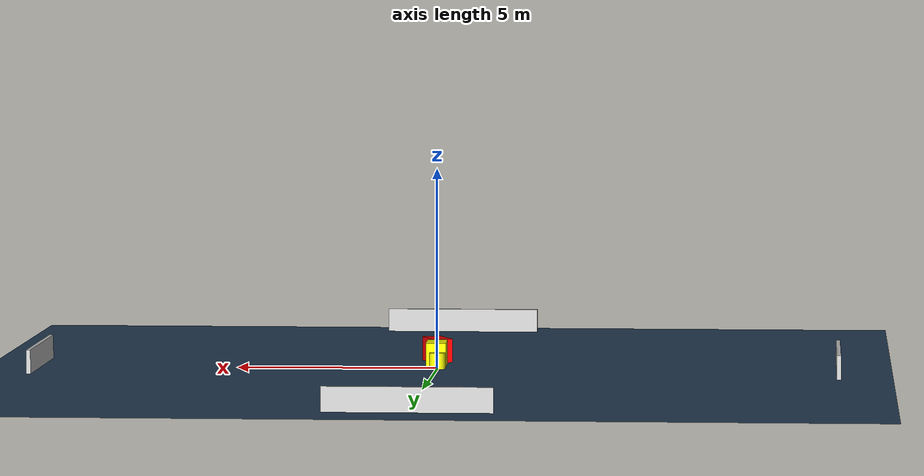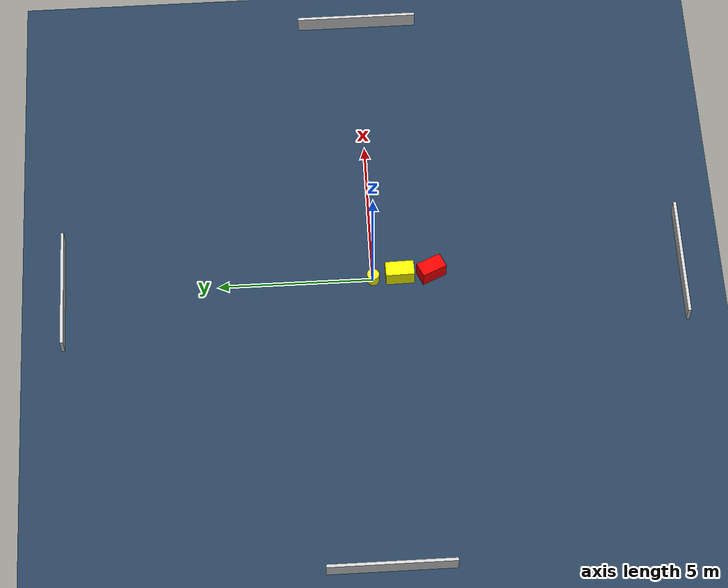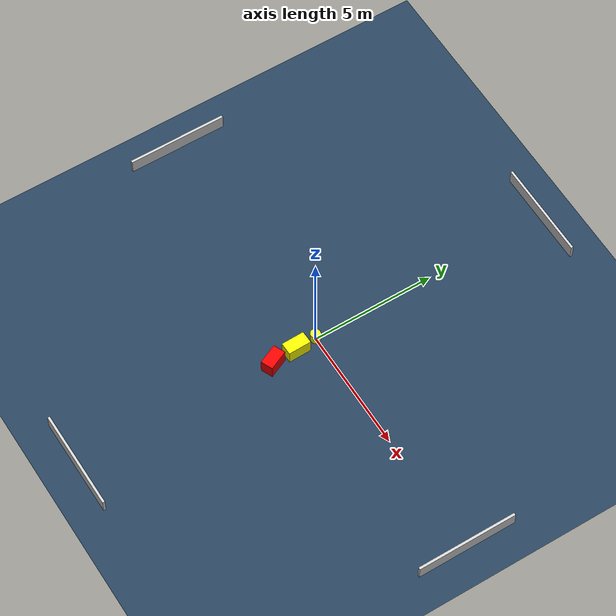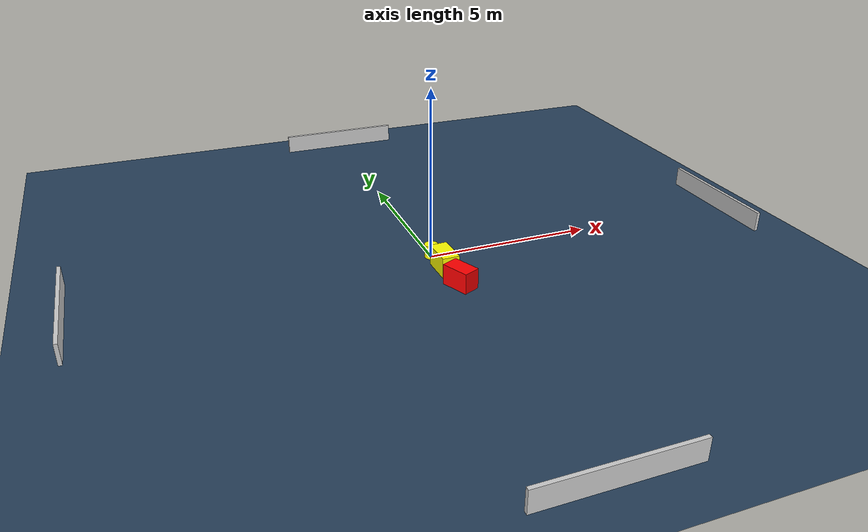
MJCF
<?xml version="1.0" ?>
<mujoco model="generated_environment">
  <option timestep="0.01" integrator="RK4" cone="elliptic"/>
  <default>
    <geom density="1"/>
  </default>
  <asset>
    <texture builtin="gradient" height="3072" name="skybox" rgb1="0.3 0.5 0.7" rgb2="0 0 0" type="skybox" width="512"/>
    <texture builtin="checker" height="300" name="groundplane" rgb1="0.2 0.3 0.4" rgb2="0.1 0.2 0.3" type="2d" width="300"/>
    <material name="groundplane" reflectance="0.2" texrepeat="5 5" texture="groundplane"/>
  </asset>
  <worldbody>
    <light dir="0 0 -1" directional="true" pos="0 0 1.5"/>
    <geom condim="3" friction="0.5 0.005 0.001" material="groundplane" name="floor" pos="0 0 0" size="0 0 0.05" type="plane"/>
    <body name="walls">
      <geom name="wall_1" condim="4" pos="-10.0 0.0 0.3" rgba="0.800000011920929 0.800000011920929 0.800000011920929 1.0" size="0.05 2.0 0.3" type="box"/>
      <geom name="wall_2" condim="4" pos="10.0 0.0 0.3" rgba="0.800000011920929 0.800000011920929 0.800000011920929 1.0" size="0.05 2.0 0.3" type="box"/>
      <geom name="wall_3" condim="4" pos="0.0 -10.0 0.3" rgba="0.800000011920929 0.800000011920929 0.800000011920929 1.0" size="2.0 0.05 0.3" type="box"/>
      <geom name="wall_4" condim="4" pos="0.0 10.0 0.3" rgba="0.800000011920929 0.800000011920929 0.800000011920929 1.0" size="2.0 0.05 0.3" type="box"/>
    </body>
    <body name="robot">
      <joint name="joint_x" type="slide" pos="0 0 0" axis="1 0 0"/>
      <joint name="joint_y" type="slide" pos="0 0 0" axis="0 1 0"/>
      <geom name="robot" type="cylinder" pos="0.0 0.0 0.2" size="0.2 0.2 0.0" mass="5.0" friction="1.0 0.005 0.0001" condim="4" rgba="1.0 1.0 0.0 1.0"/>
    </body>
    <body name="obstacle_1_movable">
      <geom name="obstacle_1_movable" condim="4" pos="0.06937790649446036 -0.8656726322277142 0.3" euler="0 0 91.3271526448005" friction="0.0 0.005 0.001" rgba="1.0 1.0 0.0 1.0" size="0.46194941737841533 0.25261569230378167 0.3" type="box" mass="0.1"/>
      <joint type="free"/>
    </body>
    <body name="obstacle_2_static">
      <geom name="obstacle_2_static" condim="4" pos="0.12802582639174187 -1.8925039716036935 0.3" euler="0 0 294.38072582567804" friction="0.0 0.005 0.001" rgba="1.0 0.0 0.0 1.0" size="0.41696375639238553 0.24756472817086456 0.3" type="box"/>
    </body>
  </worldbody>
  <actuator>
    <motor name="actuator_x" joint="joint_x" gear="1" ctrlrange="-1 1"/>
    <motor name="actuator_y" joint="joint_y" gear="1" ctrlrange="-1 1"/>
  </actuator>
</mujoco>
